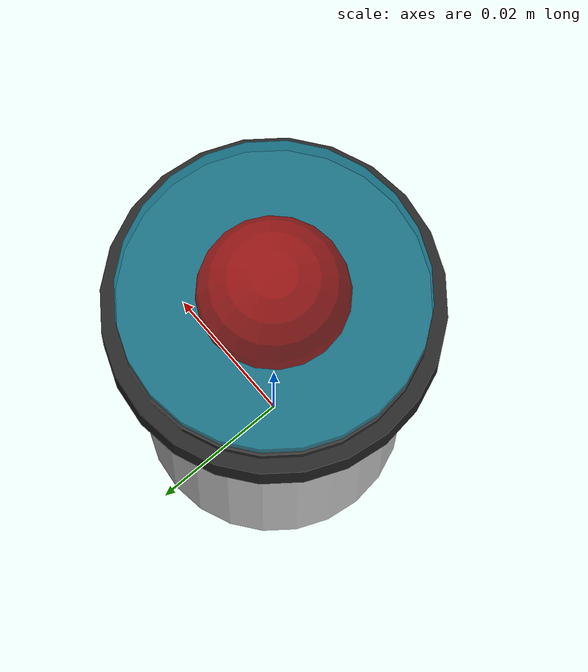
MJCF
<mujoco model="suction_hand">
    <actuator>
        <!-- dummy actuator so robosuite action-space dimension = 1 -->
        <general name="suction_valve" joint="suction_dummy_joint"
                 ctrllimited="true" ctrlrange="-1 1"
                 gainprm="100 0 0" biasprm="0 -100 0" biastype="affine"/>
    </actuator>

    <worldbody>
        <body name="right_gripper" pos="0 0 0" quat="0.707107 0 0 -0.707107">

            <!-- Force-torque frame -->
            <site name="ft_frame" pos="0 0 0" size="0.01 0.01 0.01"
                  rgba="1 0 0 1" type="sphere" group="1"/>
            <inertial pos="0 0 0.06" mass="0.25"
                      diaginertia="0.005 0.005 0.003"/>

            <!-- Wrist adaptor: thin cylinder -->
            <geom name="wrist_visual" type="cylinder" size="0.018 0.020"
                  pos="0 0 0.020" contype="0" conaffinity="0" group="1"
                  rgba="0.85 0.85 0.85 1"/>
            <geom name="wrist_collision" type="cylinder" size="0.018 0.020"
                  pos="0 0 0.020" contype="1" conaffinity="1"
                  friction="0.5 0.005 0.0001" group="0"/>

            <!-- Suction cup body -->
            <body name="suction_cup_body" pos="0 0 0.05">
                <inertial pos="0 0 0.015" mass="0.08"
                          diaginertia="0.001 0.001 0.001"/>

                <!-- Dummy sliding joint: needed so the actuator has a joint to bind to.
                     Range is locked tight — cup cannot move. -->
                <joint name="suction_dummy_joint" type="slide" axis="0 0 1"
                       limited="true" range="-0.0001 0.0001"
                       damping="1000" armature="0.5" frictionloss="0.5"/>

                <!-- Outer rim ring (visual, dark rubber look) -->
                <geom name="rim_visual" type="cylinder" size="0.022 0.003"
                      pos="0 0 0.003" contype="0" conaffinity="0" group="1"
                      rgba="0.15 0.15 0.15 1"/>

                <!-- Inner pad (visual, lighter) -->
                <geom name="pad_visual" type="cylinder" size="0.015 0.002"
                      pos="0 0 0.003" contype="0" conaffinity="0" group="1"
                      rgba="0.35 0.35 0.35 1"/>

                <!-- Collision pad: high-friction flat disc for contact detection -->
                <geom name="suction_pad_collision" type="cylinder"
                      size="0.020 0.002" pos="0 0 0.005"
                      contype="1" conaffinity="1"
                      friction="3 0.1 0.01" condim="6"
                      solref="0.01 0.5" solimp="0.99 0.999 0.001"
                      group="0" rgba="0.2 0.2 0.2 1"/>

                <!-- EEF child body: grip site lives here -->
                <body name="eef" pos="0 0 0.01" quat="1 0 0 0">
                    <site name="grip_site" pos="0 0 0"
                          size="0.01 0.01 0.01" rgba="1 0 0 0.5"
                          type="sphere" group="1"/>
                    <!-- Suction on/off indicator: RED=off, GREEN=on; alpha=0 default so cameras never see it -->
                    <site name="suction_indicator" pos="0 0 0"
                          size="0.022 0.003" rgba="1 0 0 0"
                          type="cylinder" group="1"/>
                    <site name="suction_site" pos="0 0 0"
                          size="0.020 0.001" rgba="0 0.8 1 0.4"
                          type="cylinder" group="1"/>
                    <site name="ee_x" pos="0.1 0 0" size="0.005 .1"
                          quat="0.707105 0 0.707108 0" rgba="1 0 0 0"
                          type="cylinder" group="1"/>
                    <site name="ee_y" pos="0 0.1 0" size="0.005 .1"
                          quat="0.707105 0.707108 0 0" rgba="0 1 0 0"
                          type="cylinder" group="1"/>
                    <site name="ee_z" pos="0 0 0.1" size="0.005 .1"
                          quat="1 0 0 0" rgba="0 0 1 0"
                          type="cylinder" group="1"/>
                    <site name="grip_site_cylinder" pos="0 0 0"
                          size="0.005 10" rgba="0 1 0 0"
                          type="cylinder" group="1"/>
                </body>
            </body>
        </body>
    </worldbody>

    <sensor>
        <force  name="force_ee"  site="ft_frame"/>
        <torque name="torque_ee" site="ft_frame"/>
    </sensor>
</mujoco>
